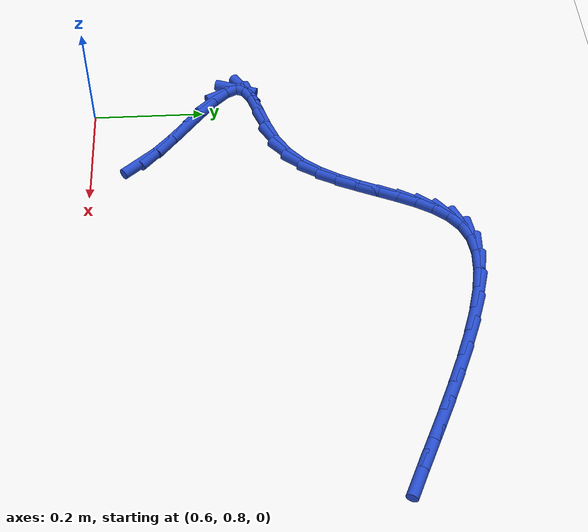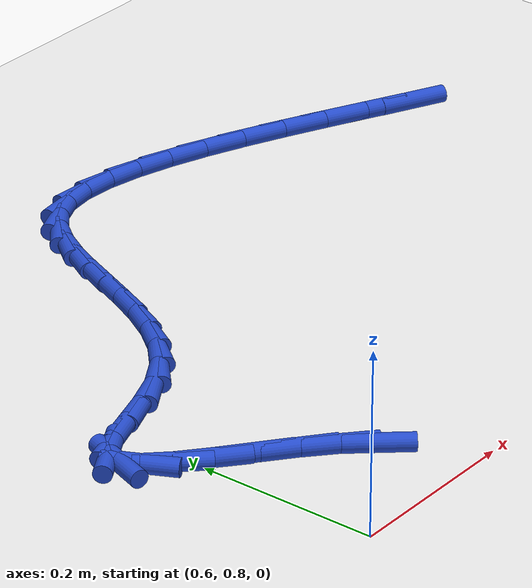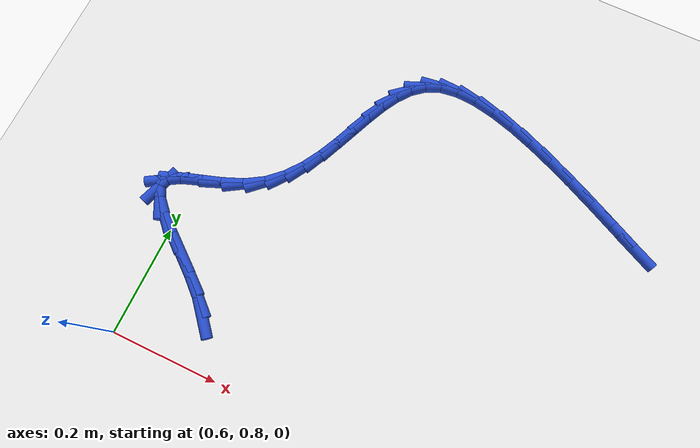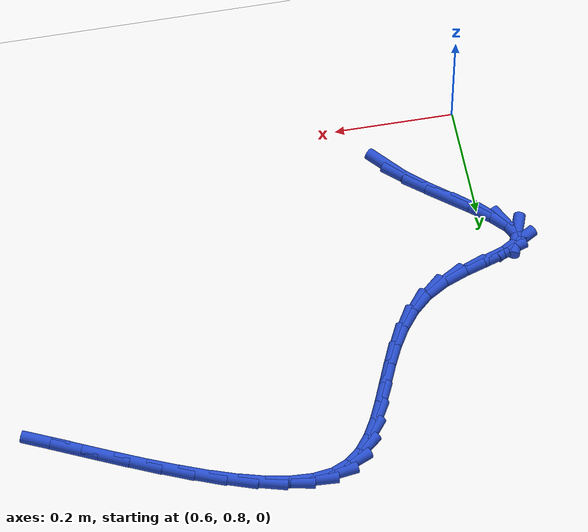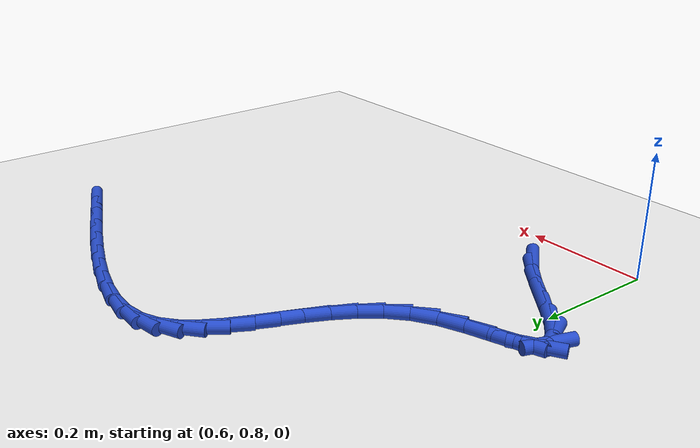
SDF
<sdf version="1.6">
 <world name="default">
  <model name="ground_plane">
   <static>1</static>
   <link name="link">
    <collision name="collision">
     <geometry><plane><normal>0 0 1</normal><size>100 100</size></plane></geometry>
     <surface><friction><ode><mu>100</mu><mu2>50</mu2></ode></friction></surface>
    </collision>
    <visual name="visual">
     <cast_shadows>0</cast_shadows>
     <geometry><plane><normal>0 0 1</normal><size>100 100</size></plane></geometry>
     <material>
      <script><uri>file://media/materials/scripts/gazebo.material</uri><name>Gazebo/WhiteGlow</name></script>
     </material>
    </visual>
   </link>
  </model>
  <model name="line">
   <link name="link_35">
    <pose>0.7284409095289941 0.8893671617186265 0.01 0 1.57 -0.8559494949749739</pose>
    <collision name="collision">
     <geometry><cylinder><radius>0.01</radius><length>0.08</length></cylinder></geometry>
    </collision>
    <visual name="visual">
     <material>
      <script><name>Gazebo/Blue</name><uri>file://media/materials/scripts/gazebo.material</uri></script>
     </material>
     <geometry><cylinder><radius>0.01</radius><length>0.08</length></cylinder></geometry>
    </visual>
   </link>
   <link name="link_36">
    <pose>0.7055272210177683 0.91576567558505 0.01 0 1.57 -0.7303945274105144</pose>
    <collision name="collision">
     <geometry><cylinder><radius>0.01</radius><length>0.08</length></cylinder></geometry>
    </collision>
    <visual name="visual">
     <material>
      <script><name>Gazebo/Blue</name><uri>file://media/materials/scripts/gazebo.material</uri></script>
     </material>
     <geometry><cylinder><radius>0.01</radius><length>0.08</length></cylinder></geometry>
    </visual>
   </link>
   <link name="link_37">
    <pose>0.6752438217315034 0.942888344270645 0.01 0 1.57 -0.6747256204293907</pose>
    <collision name="collision">
     <geometry><cylinder><radius>0.01</radius><length>0.08</length></cylinder></geometry>
    </collision>
    <visual name="visual">
     <material>
      <script><name>Gazebo/Blue</name><uri>file://media/materials/scripts/gazebo.material</uri></script>
     </material>
     <geometry><cylinder><radius>0.01</radius><length>0.08</length></cylinder></geometry>
    </visual>
   </link>
   <link name="link_38">
    <pose>0.6413412399643681 0.970009557799453 0.01 0 1.57 -0.6644220891463065</pose>
    <collision name="collision">
     <geometry><cylinder><radius>0.01</radius><length>0.08</length></cylinder></geometry>
    </collision>
    <visual name="visual">
     <material>
      <script><name>Gazebo/Blue</name><uri>file://media/materials/scripts/gazebo.material</uri></script>
     </material>
     <geometry><cylinder><radius>0.01</radius><length>0.08</length></cylinder></geometry>
    </visual>
   </link>
   <link name="link_39">
    <pose>0.6076637925419518 0.9963862413443105 0.01 0 1.57 -0.6990233196383554</pose>
    <collision name="collision">
     <geometry><cylinder><radius>0.01</radius><length>0.08</length></cylinder></geometry>
    </collision>
    <visual name="visual">
     <material>
      <script><name>Gazebo/Blue</name><uri>file://media/materials/scripts/gazebo.material</uri></script>
     </material>
     <geometry><cylinder><radius>0.01</radius><length>0.08</length></cylinder></geometry>
    </visual>
   </link>
   <link name="link_40">
    <pose>0.5780557962898447 1.021275320078055 0.01 0 1.57 -0.8071334936219035</pose>
    <collision name="collision">
     <geometry><cylinder><radius>0.01</radius><length>0.08</length></cylinder></geometry>
    </collision>
    <visual name="visual">
     <material>
      <script><name>Gazebo/Blue</name><uri>file://media/materials/scripts/gazebo.material</uri></script>
     </material>
     <geometry><cylinder><radius>0.01</radius><length>0.08</length></cylinder></geometry>
    </visual>
   </link>
   <link name="link_41">
    <pose>0.5563615680336359 1.043933719173525 0.01 0 1.57 -1.1033430249269622</pose>
    <collision name="collision">
     <geometry><cylinder><radius>0.01</radius><length>0.08</length></cylinder></geometry>
    </collision>
    <visual name="visual">
     <material>
      <script><name>Gazebo/Blue</name><uri>file://media/materials/scripts/gazebo.material</uri></script>
     </material>
     <geometry><cylinder><radius>0.01</radius><length>0.08</length></cylinder></geometry>
    </visual>
   </link>
   <link name="link_42">
    <pose>0.5464254245989147 1.0636183638035563 0.01 0 1.57 1.234013130060733</pose>
    <collision name="collision">
     <geometry><cylinder><radius>0.01</radius><length>0.08</length></cylinder></geometry>
    </collision>
    <visual name="visual">
     <material>
      <script><name>Gazebo/Blue</name><uri>file://media/materials/scripts/gazebo.material</uri></script>
     </material>
     <geometry><cylinder><radius>0.01</radius><length>0.08</length></cylinder></geometry>
    </visual>
   </link>
   <link name="link_43">
    <pose>0.5520236637912591 1.07960777508797 0.01 0 1.57 0.535409955667984</pose>
    <collision name="collision">
     <geometry><cylinder><radius>0.01</radius><length>0.08</length></cylinder></geometry>
    </collision>
    <visual name="visual">
     <material>
      <script><name>Gazebo/Blue</name><uri>file://media/materials/scripts/gazebo.material</uri></script>
     </material>
     <geometry><cylinder><radius>0.01</radius><length>0.08</length></cylinder></geometry>
    </visual>
   </link>
   <link name="link_44">
    <pose>0.5734150313498295 1.092297292176621 0.01 0 1.57 0.33992400352042645</pose>
    <collision name="collision">
     <geometry><cylinder><radius>0.01</radius><length>0.08</length></cylinder></geometry>
    </collision>
    <visual name="visual">
     <material>
      <script><name>Gazebo/Blue</name><uri>file://media/materials/scripts/gazebo.material</uri></script>
     </material>
     <geometry><cylinder><radius>0.01</radius><length>0.08</length></cylinder></geometry>
    </visual>
   </link>
   <link name="link_45">
    <pose>0.6057075738964205 1.1037175942322324 0.01 0 1.57 0.3141571661343411</pose>
    <collision name="collision">
     <geometry><cylinder><radius>0.01</radius><length>0.08</length></cylinder></geometry>
    </collision>
    <visual name="visual">
     <material>
      <script><name>Gazebo/Blue</name><uri>file://media/materials/scripts/gazebo.material</uri></script>
     </material>
     <geometry><cylinder><radius>0.01</radius><length>0.08</length></cylinder></geometry>
    </visual>
   </link>
   <link name="link_46">
    <pose>0.6435997242090881 1.1160294122596626 0.01 0 1.57 0.38249096997888565</pose>
    <collision name="collision">
     <geometry><cylinder><radius>0.01</radius><length>0.08</length></cylinder></geometry>
    </collision>
    <visual name="visual">
     <material>
      <script><name>Gazebo/Blue</name><uri>file://media/materials/scripts/gazebo.material</uri></script>
     </material>
     <geometry><cylinder><radius>0.01</radius><length>0.08</length></cylinder></geometry>
    </visual>
   </link>
   <link name="link_47">
    <pose>0.6817899150658879 1.1313934772637688 0.01 0 1.57 0.5468859215252073</pose>
    <collision name="collision">
     <geometry><cylinder><radius>0.01</radius><length>0.08</length></cylinder></geometry>
    </collision>
    <visual name="visual">
     <material>
      <script><name>Gazebo/Blue</name><uri>file://media/materials/scripts/gazebo.material</uri></script>
     </material>
     <geometry><cylinder><radius>0.01</radius><length>0.08</length></cylinder></geometry>
    </visual>
   </link>
   <link name="link_48">
    <pose>0.715305463447952 1.151798705352107 0.01 0 1.57 0.7466299426678537</pose>
    <collision name="collision">
     <geometry><cylinder><radius>0.01</radius><length>0.08</length></cylinder></geometry>
    </collision>
    <visual name="visual">
     <material>
      <script><name>Gazebo/Blue</name><uri>file://media/materials/scripts/gazebo.material</uri></script>
     </material>
     <geometry><cylinder><radius>0.01</radius><length>0.08</length></cylinder></geometry>
    </visual>
   </link>
   <link name="link_49">
    <pose>0.7428687809344442 1.1773036301664717 0.01 0 1.57 0.9149940455757197</pose>
    <collision name="collision">
     <geometry><cylinder><radius>0.01</radius><length>0.08</length></cylinder></geometry>
    </collision>
    <visual name="visual">
     <material>
      <script><name>Gazebo/Blue</name><uri>file://media/materials/scripts/gazebo.material</uri></script>
     </material>
     <geometry><cylinder><radius>0.01</radius><length>0.08</length></cylinder></geometry>
    </visual>
   </link>
   <link name="link_50">
    <pose>0.7655267228859179 1.2067524549981905 0.01 0 1.57 1.0417562994704492</pose>
    <collision name="collision">
     <geometry><cylinder><radius>0.01</radius><length>0.08</length></cylinder></geometry>
    </collision>
    <visual name="visual">
     <material>
      <script><name>Gazebo/Blue</name><uri>file://media/materials/scripts/gazebo.material</uri></script>
     </material>
     <geometry><cylinder><radius>0.01</radius><length>0.08</length></cylinder></geometry>
    </visual>
   </link>
   <link name="link_51">
    <pose>0.7843622983292439 1.2389704958268641 0.01 0 1.57 1.1264978375422985</pose>
    <collision name="collision">
     <geometry><cylinder><radius>0.01</radius><length>0.08</length></cylinder></geometry>
    </collision>
    <visual name="visual">
     <material>
      <script><name>Gazebo/Blue</name><uri>file://media/materials/scripts/gazebo.material</uri></script>
     </material>
     <geometry><cylinder><radius>0.01</radius><length>0.08</length></cylinder></geometry>
    </visual>
   </link>
   <link name="link_52">
    <pose>0.8004585162912932 1.2727830686320942 0.01 0 1.57 1.1716234936725571</pose>
    <collision name="collision">
     <geometry><cylinder><radius>0.01</radius><length>0.08</length></cylinder></geometry>
    </collision>
    <visual name="visual">
     <material>
      <script><name>Gazebo/Blue</name><uri>file://media/materials/scripts/gazebo.material</uri></script>
     </material>
     <geometry><cylinder><radius>0.01</radius><length>0.08</length></cylinder></geometry>
    </visual>
   </link>
   <link name="link_53">
    <pose>0.8148983857989359 1.3070154893934816 0.01 0 1.57 1.1781059020513198</pose>
    <collision name="collision">
     <geometry><cylinder><radius>0.01</radius><length>0.08</length></cylinder></geometry>
    </collision>
    <visual name="visual">
     <material>
      <script><name>Gazebo/Blue</name><uri>file://media/materials/scripts/gazebo.material</uri></script>
     </material>
     <geometry><cylinder><radius>0.01</radius><length>0.08</length></cylinder></geometry>
    </visual>
   </link>
   <link name="link_54">
    <pose>0.8287649158790432 1.3404930740906267 0.01 0 1.57 1.1432190507362112</pose>
    <collision name="collision">
     <geometry><cylinder><radius>0.01</radius><length>0.08</length></cylinder></geometry>
    </collision>
    <visual name="visual">
     <material>
      <script><name>Gazebo/Blue</name><uri>file://media/materials/scripts/gazebo.material</uri></script>
     </material>
     <geometry><cylinder><radius>0.01</radius><length>0.08</length></cylinder></geometry>
    </visual>
   </link>
   <link name="link_55">
    <pose>0.8431411155584857 1.3720411387031313 0.01 0 1.57 1.0592296349108181</pose>
    <collision name="collision">
     <geometry><cylinder><radius>0.01</radius><length>0.08</length></cylinder></geometry>
    </collision>
    <visual name="visual">
     <material>
      <script><name>Gazebo/Blue</name><uri>file://media/materials/scripts/gazebo.material</uri></script>
     </material>
     <geometry><cylinder><radius>0.01</radius><length>0.08</length></cylinder></geometry>
    </visual>
   </link>
   <link name="link_56">
    <pose>0.8591099938641339 1.400484999210596 0.01 0 1.57 0.913643155080199</pose>
    <collision name="collision">
     <geometry><cylinder><radius>0.01</radius><length>0.08</length></cylinder></geometry>
    </collision>
    <visual name="visual">
     <material>
      <script><name>Gazebo/Blue</name><uri>file://media/materials/scripts/gazebo.material</uri></script>
     </material>
     <geometry><cylinder><radius>0.01</radius><length>0.08</length></cylinder></geometry>
    </visual>
   </link>
   <link name="link_57">
    <pose>0.8777545598228587 1.4246499715926215 0.01 0 1.57 0.6958440394480391</pose>
    <collision name="collision">
     <geometry><cylinder><radius>0.01</radius><length>0.08</length></cylinder></geometry>
    </collision>
    <visual name="visual">
     <material>
      <script><name>Gazebo/Blue</name><uri>file://media/materials/scripts/gazebo.material</uri></script>
     </material>
     <geometry><cylinder><radius>0.01</radius><length>0.08</length></cylinder></geometry>
    </visual>
   </link>
   <link name="link_58">
    <pose>0.9001578224615306 1.4433613718288099 0.01 0 1.57 0.4174359137270078</pose>
    <collision name="collision">
     <geometry><cylinder><radius>0.01</radius><length>0.08</length></cylinder></geometry>
    </collision>
    <visual name="visual">
     <material>
      <script><name>Gazebo/Blue</name><uri>file://media/materials/scripts/gazebo.material</uri></script>
     </material>
     <geometry><cylinder><radius>0.01</radius><length>0.08</length></cylinder></geometry>
    </visual>
   </link>
   <link name="link_59">
    <pose>0.9274027800360201 1.4554445274772732 0.01 0 1.57 0.1415273474096309</pose>
    <collision name="collision">
     <geometry><cylinder><radius>0.01</radius><length>0.08</length></cylinder></geometry>
    </collision>
    <visual name="visual">
     <material>
      <script><name>Gazebo/Blue</name><uri>file://media/materials/scripts/gazebo.material</uri></script>
     </material>
     <geometry><cylinder><radius>0.01</radius><length>0.08</length></cylinder></geometry>
    </visual>
   </link>
   <link name="link_60">
    <pose>0.9602062802843765 1.4601183672575422 0.01 0 1.57 -0.055191477168384996</pose>
    <collision name="collision">
     <geometry><cylinder><radius>0.01</radius><length>0.08</length></cylinder></geometry>
    </collision>
    <visual name="visual">
     <material>
      <script><name>Gazebo/Blue</name><uri>file://media/materials/scripts/gazebo.material</uri></script>
     </material>
     <geometry><cylinder><radius>0.01</radius><length>0.08</length></cylinder></geometry>
    </visual>
   </link>
   <link name="link_61">
    <pose>0.9979538951214667 1.4580329026943528 0.01 0 1.57 -0.18619947121549568</pose>
    <collision name="collision">
     <geometry><cylinder><radius>0.01</radius><length>0.08</length></cylinder></geometry>
    </collision>
    <visual name="visual">
     <material>
      <script><name>Gazebo/Blue</name><uri>file://media/materials/scripts/gazebo.material</uri></script>
     </material>
     <geometry><cylinder><radius>0.01</radius><length>0.08</length></cylinder></geometry>
    </visual>
   </link>
   <link name="link_62">
    <pose>1.0397287248588571 1.4501632934921107 0.01 0 1.57 -0.2752953349042242</pose>
    <collision name="collision">
     <geometry><cylinder><radius>0.01</radius><length>0.08</length></cylinder></geometry>
    </collision>
    <visual name="visual">
     <material>
      <script><name>Gazebo/Blue</name><uri>file://media/materials/scripts/gazebo.material</uri></script>
     </material>
     <geometry><cylinder><radius>0.01</radius><length>0.08</length></cylinder></geometry>
    </visual>
   </link>
   <link name="link_63">
    <pose>1.0846138698081158 1.4374846993552204 0.01 0 1.57 -0.337335518957042</pose>
    <collision name="collision">
     <geometry><cylinder><radius>0.01</radius><length>0.08</length></cylinder></geometry>
    </collision>
    <visual name="visual">
     <material>
      <script><name>Gazebo/Blue</name><uri>file://media/materials/scripts/gazebo.material</uri></script>
     </material>
     <geometry><cylinder><radius>0.01</radius><length>0.08</length></cylinder></geometry>
    </visual>
   </link>
   <link name="link_64">
    <pose>1.1316924302808098 1.4209722799880873 0.01 0 1.57 -0.38102424786872485</pose>
    <collision name="collision">
     <geometry><cylinder><radius>0.01</radius><length>0.08</length></cylinder></geometry>
    </collision>
    <visual name="visual">
     <material>
      <script><name>Gazebo/Blue</name><uri>file://media/materials/scripts/gazebo.material</uri></script>
     </material>
     <geometry><cylinder><radius>0.01</radius><length>0.08</length></cylinder></geometry>
    </visual>
   </link>
   <link name="link_65">
    <pose>1.1800475065885059 1.4016011950951162 0.01 0 1.57 -0.4114091722559815</pose>
    <collision name="collision">
     <geometry><cylinder><radius>0.01</radius><length>0.08</length></cylinder></geometry>
    </collision>
    <visual name="visual">
     <material>
      <script><name>Gazebo/Blue</name><uri>file://media/materials/scripts/gazebo.material</uri></script>
     </material>
     <geometry><cylinder><radius>0.01</radius><length>0.08</length></cylinder></geometry>
    </visual>
   </link>
   <link name="link_66">
    <pose>1.2287621990427713 1.3803466043807124 0.01 0 1.57 -0.4313191744088357</pose>
    <collision name="collision">
     <geometry><cylinder><radius>0.01</radius><length>0.08</length></cylinder></geometry>
    </collision>
    <visual name="visual">
     <material>
      <script><name>Gazebo/Blue</name><uri>file://media/materials/scripts/gazebo.material</uri></script>
     </material>
     <geometry><cylinder><radius>0.01</radius><length>0.08</length></cylinder></geometry>
    </visual>
   </link>
   <link name="link_67">
    <pose>1.2769196079551728 1.3581836675492815 0.01 0 1.57 -0.4420770451316241</pose>
    <collision name="collision">
     <geometry><cylinder><radius>0.01</radius><length>0.08</length></cylinder></geometry>
    </collision>
    <visual name="visual">
     <material>
      <script><name>Gazebo/Blue</name><uri>file://media/materials/scripts/gazebo.material</uri></script>
     </material>
     <geometry><cylinder><radius>0.01</radius><length>0.08</length></cylinder></geometry>
    </visual>
   </link>
   <link name="link_68">
    <pose>1.3236028336372785 1.3360875443052282 0.01 0 1.57 -0.44373165430215145</pose>
    <collision name="collision">
     <geometry><cylinder><radius>0.01</radius><length>0.08</length></cylinder></geometry>
    </collision>
    <visual name="visual">
     <material>
      <script><name>Gazebo/Blue</name><uri>file://media/materials/scripts/gazebo.material</uri></script>
     </material>
     <geometry><cylinder><radius>0.01</radius><length>0.08</length></cylinder></geometry>
    </visual>
   </link>
   <link name="link_69">
    <pose>1.3678949764006545 1.315033394352957 0.01 0 1.57 -0.43484396868742275</pose>
    <collision name="collision">
     <geometry><cylinder><radius>0.01</radius><length>0.08</length></cylinder></geometry>
    </collision>
    <visual name="visual">
     <material>
      <script><name>Gazebo/Blue</name><uri>file://media/materials/scripts/gazebo.material</uri></script>
     </material>
     <geometry><cylinder><radius>0.01</radius><length>0.08</length></cylinder></geometry>
    </visual>
   </link>
  </model>
 </world>
</sdf>
